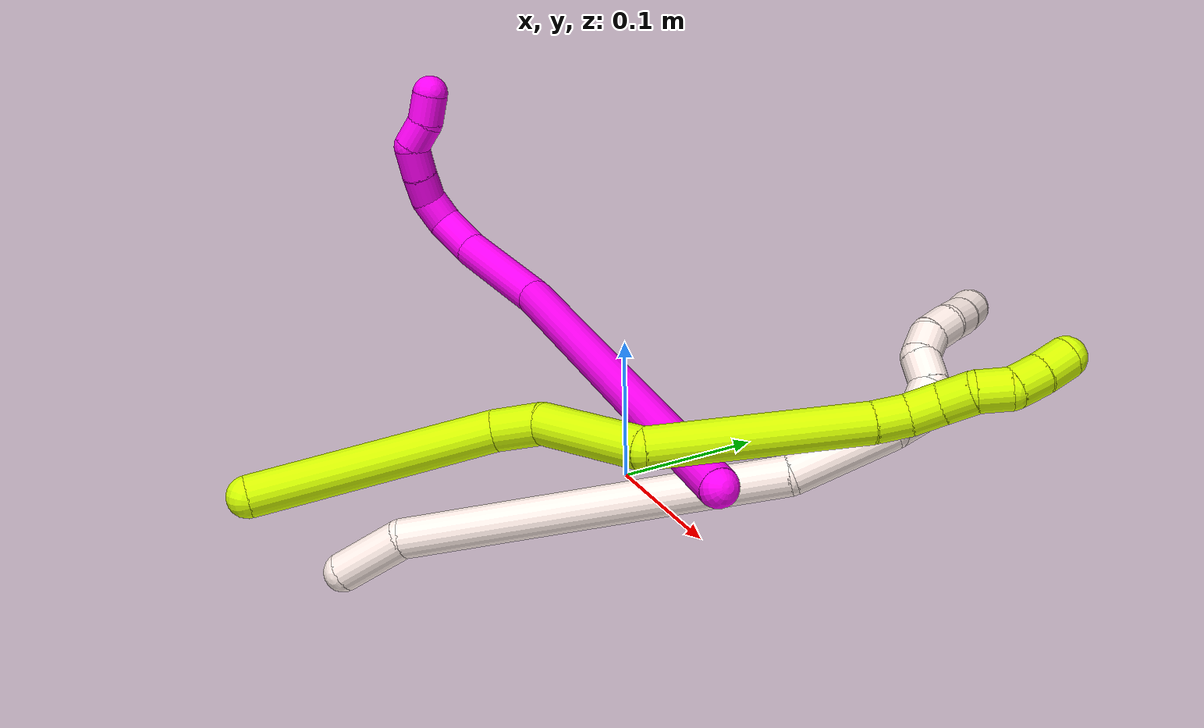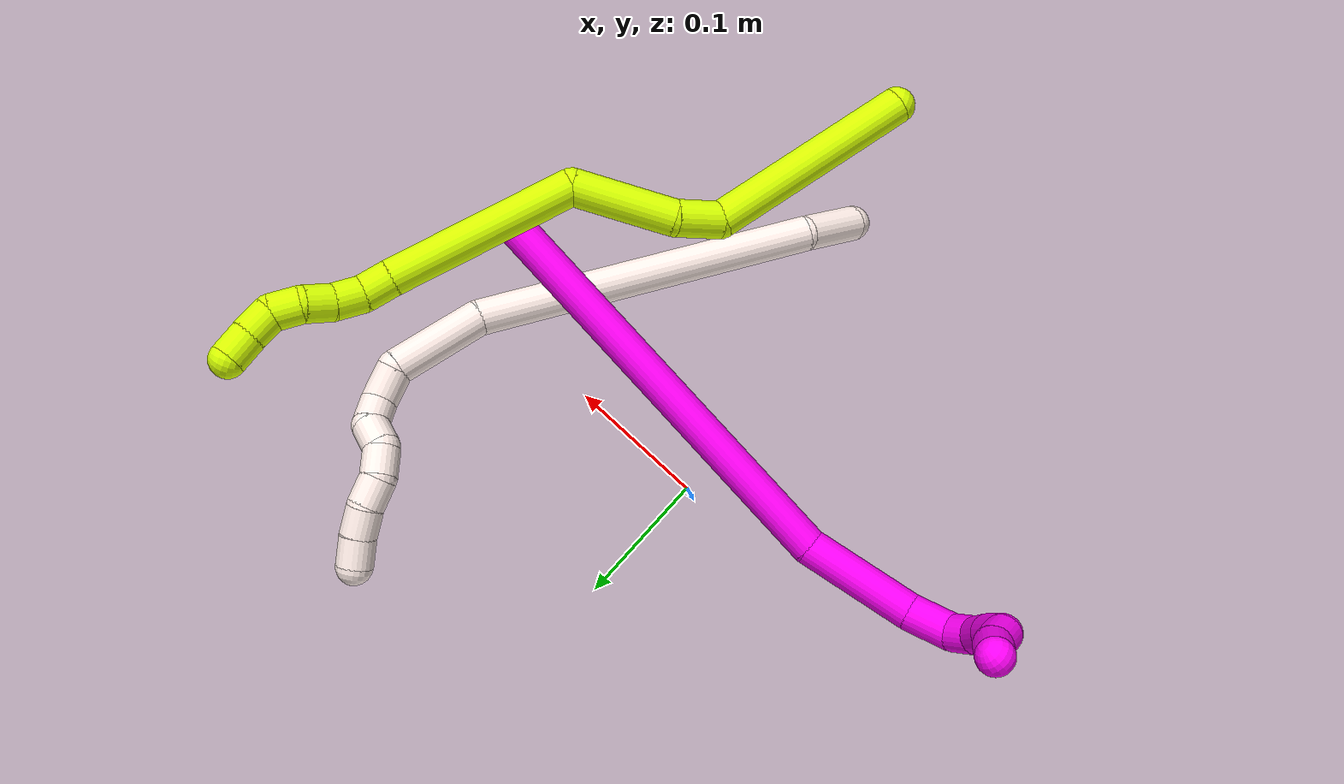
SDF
<sdf version="1.7">
 <world name="default">
  <model name="10">
   <static>0</static>
   <link name="10">
    <collision name="collision-cylinder-e_1_1_4">
     <pose>-0.060135 0.018952 -0.128294 -2.99493 -0.434187 2.49858</pose>
     <geometry><cylinder><radius>0.0125</radius><length>0.2859</length></cylinder></geometry>
     <surface>
      <friction><ode><mu>1.16</mu><mu2>1.16</mu2><slip1>0</slip1><slip2>0</slip2></ode></friction>
      <contact><ode><kp>1e+06</kp><kd>1</kd><max_vel>0</max_vel><min_depth>0.001</min_depth></ode></contact>
     </surface>
    </collision>
    <visual name="visual-cylinder-e_1_1_4">
     <pose>-0.060135 0.018952 -0.128294 -2.99493 -0.434187 2.49858</pose>
     <geometry><cylinder><radius>0.0125</radius><length>0.2859</length></cylinder></geometry>
     <material><ambient>1 0 0.964706 1</ambient></material>
    </visual>
    <collision name="collision-cylinder-e_2_4_5">
     <pose>-0.142405 0.034146 -0.288285 3.02358 -0.606319 -2.76829</pose>
     <geometry><cylinder><radius>0.0125</radius><length>0.077686</length></cylinder></geometry>
     <surface>
      <friction><ode><mu>1.16</mu><mu2>1.16</mu2><slip1>0</slip1><slip2>0</slip2></ode></friction>
      <contact><ode><kp>1e+06</kp><kd>1</kd><max_vel>0</max_vel><min_depth>0.001</min_depth></ode></contact>
     </surface>
    </collision>
    <visual name="visual-cylinder-e_2_4_5">
     <pose>-0.142405 0.034146 -0.288285 3.02358 -0.606319 -2.76829</pose>
     <geometry><cylinder><radius>0.0125</radius><length>0.077686</length></cylinder></geometry>
     <material><ambient>1 0 0.964706 1</ambient></material>
    </visual>
    <collision name="collision-cylinder-e_3_5_6">
     <pose>-0.176875 0.027626 -0.329004 2.84451 -0.917852 -2.55345</pose>
     <geometry><cylinder><radius>0.0125</radius><length>0.03106</length></cylinder></geometry>
     <surface>
      <friction><ode><mu>1.16</mu><mu2>1.16</mu2><slip1>0</slip1><slip2>0</slip2></ode></friction>
      <contact><ode><kp>1e+06</kp><kd>1</kd><max_vel>0</max_vel><min_depth>0.001</min_depth></ode></contact>
     </surface>
    </collision>
    <visual name="visual-cylinder-e_3_5_6">
     <pose>-0.176875 0.027626 -0.329004 2.84451 -0.917852 -2.55345</pose>
     <geometry><cylinder><radius>0.0125</radius><length>0.03106</length></cylinder></geometry>
     <material><ambient>1 0 0.964706 1</ambient></material>
    </visual>
    <collision name="collision-cylinder-e_4_6_7">
     <pose>-0.199019 0.021985 -0.338296 1.66424 -1.28407 -1.37491</pose>
     <geometry><cylinder><radius>0.0125</radius><length>0.020451</length></cylinder></geometry>
     <surface>
      <friction><ode><mu>1.16</mu><mu2>1.16</mu2><slip1>0</slip1><slip2>0</slip2></ode></friction>
      <contact><ode><kp>1e+06</kp><kd>1</kd><max_vel>0</max_vel><min_depth>0.001</min_depth></ode></contact>
     </surface>
    </collision>
    <visual name="visual-cylinder-e_4_6_7">
     <pose>-0.199019 0.021985 -0.338296 1.66424 -1.28407 -1.37491</pose>
     <geometry><cylinder><radius>0.0125</radius><length>0.020451</length></cylinder></geometry>
     <material><ambient>1 0 0.964706 1</ambient></material>
    </visual>
    <collision name="collision-cylinder-e_5_7_8">
     <pose>-0.21812 0.017592 -0.334152 0.330477 -1.10545 -0.205012</pose>
     <geometry><cylinder><radius>0.0125</radius><length>0.020797</length></cylinder></geometry>
     <surface>
      <friction><ode><mu>1.16</mu><mu2>1.16</mu2><slip1>0</slip1><slip2>0</slip2></ode></friction>
      <contact><ode><kp>1e+06</kp><kd>1</kd><max_vel>0</max_vel><min_depth>0.001</min_depth></ode></contact>
     </surface>
    </collision>
    <visual name="visual-cylinder-e_5_7_8">
     <pose>-0.21812 0.017592 -0.334152 0.330477 -1.10545 -0.205012</pose>
     <geometry><cylinder><radius>0.0125</radius><length>0.020797</length></cylinder></geometry>
     <material><ambient>1 0 0.964706 1</ambient></material>
    </visual>
    <collision name="collision-cylinder-e_6_8_9">
     <pose>-0.237656 0.01527 -0.325211 0.176433 -1.14885 -0.114365</pose>
     <geometry><cylinder><radius>0.0125</radius><length>0.022456</length></cylinder></geometry>
     <surface>
      <friction><ode><mu>1.16</mu><mu2>1.16</mu2><slip1>0</slip1><slip2>0</slip2></ode></friction>
      <contact><ode><kp>1e+06</kp><kd>1</kd><max_vel>0</max_vel><min_depth>0.001</min_depth></ode></contact>
     </surface>
    </collision>
    <visual name="visual-cylinder-e_6_8_9">
     <pose>-0.237656 0.01527 -0.325211 0.176433 -1.14885 -0.114365</pose>
     <geometry><cylinder><radius>0.0125</radius><length>0.022456</length></cylinder></geometry>
     <material><ambient>1 0 0.964706 1</ambient></material>
    </visual>
    <collision name="collision-cylinder-e_7_9_10">
     <pose>-0.254107 0.020367 -0.315078 -0.811302 -0.651437 0.288096</pose>
     <geometry><cylinder><radius>0.0125</radius><length>0.020476</length></cylinder></geometry>
     <surface>
      <friction><ode><mu>1.16</mu><mu2>1.16</mu2><slip1>0</slip1><slip2>0</slip2></ode></friction>
      <contact><ode><kp>1e+06</kp><kd>1</kd><max_vel>0</max_vel><min_depth>0.001</min_depth></ode></contact>
     </surface>
    </collision>
    <visual name="visual-cylinder-e_7_9_10">
     <pose>-0.254107 0.020367 -0.315078 -0.811302 -0.651437 0.288096</pose>
     <geometry><cylinder><radius>0.0125</radius><length>0.020476</length></cylinder></geometry>
     <material><ambient>1 0 0.964706 1</ambient></material>
    </visual>
    <collision name="collision-cylinder-e_8_10_2">
     <pose>-0.269156 0.03005 -0.305043 -0.706218 -0.988443 0.392071</pose>
     <geometry><cylinder><radius>0.0125</radius><length>0.021173</length></cylinder></geometry>
     <surface>
      <friction><ode><mu>1.16</mu><mu2>1.16</mu2><slip1>0</slip1><slip2>0</slip2></ode></friction>
      <contact><ode><kp>1e+06</kp><kd>1</kd><max_vel>0</max_vel><min_depth>0.001</min_depth></ode></contact>
     </surface>
    </collision>
    <visual name="visual-cylinder-e_8_10_2">
     <pose>-0.269156 0.03005 -0.305043 -0.706218 -0.988443 0.392071</pose>
     <geometry><cylinder><radius>0.0125</radius><length>0.021173</length></cylinder></geometry>
     <material><ambient>1 0 0.964706 1</ambient></material>
    </visual>
    <collision name="collision-sphere-2">
     <pose>-0.277997 0.033829 -0.300613 0 -0 0</pose>
     <geometry><sphere><radius>0.0125</radius></sphere></geometry>
     <surface>
      <friction><ode><mu>1.16</mu><mu2>1.16</mu2><slip1>0</slip1><slip2>0</slip2></ode></friction>
      <contact><ode><kp>1e+06</kp><kd>1</kd><max_vel>0</max_vel><min_depth>0.001</min_depth></ode></contact>
     </surface>
    </collision>
    <visual name="visual-sphere-2">
     <pose>-0.277997 0.033829 -0.300613 0 -0 0</pose>
     <geometry><sphere><radius>0.0125</radius></sphere></geometry>
     <material><ambient>1 0 0.964706 1</ambient></material>
    </visual>
    <collision name="collision-sphere-10">
     <pose>-0.260314 0.026272 -0.309472 0 -0 0</pose>
     <geometry><sphere><radius>0.0125</radius></sphere></geometry>
     <surface>
      <friction><ode><mu>1.16</mu><mu2>1.16</mu2><slip1>0</slip1><slip2>0</slip2></ode></friction>
      <contact><ode><kp>1e+06</kp><kd>1</kd><max_vel>0</max_vel><min_depth>0.001</min_depth></ode></contact>
     </surface>
    </collision>
    <visual name="visual-sphere-10">
     <pose>-0.260314 0.026272 -0.309472 0 -0 0</pose>
     <geometry><sphere><radius>0.0125</radius></sphere></geometry>
     <material><ambient>1 0 0.964706 1</ambient></material>
    </visual>
    <collision name="collision-sphere-9">
     <pose>-0.247899 0.014463 -0.320684 0 -0 0</pose>
     <geometry><sphere><radius>0.0125</radius></sphere></geometry>
     <surface>
      <friction><ode><mu>1.16</mu><mu2>1.16</mu2><slip1>0</slip1><slip2>0</slip2></ode></friction>
      <contact><ode><kp>1e+06</kp><kd>1</kd><max_vel>0</max_vel><min_depth>0.001</min_depth></ode></contact>
     </surface>
    </collision>
    <visual name="visual-sphere-9">
     <pose>-0.247899 0.014463 -0.320684 0 -0 0</pose>
     <geometry><sphere><radius>0.0125</radius></sphere></geometry>
     <material><ambient>1 0 0.964706 1</ambient></material>
    </visual>
    <collision name="collision-sphere-4">
     <pose>-0.12027 0.037904 -0.256587 0 -0 0</pose>
     <geometry><sphere><radius>0.0125</radius></sphere></geometry>
     <surface>
      <friction><ode><mu>1.16</mu><mu2>1.16</mu2><slip1>0</slip1><slip2>0</slip2></ode></friction>
      <contact><ode><kp>1e+06</kp><kd>1</kd><max_vel>0</max_vel><min_depth>0.001</min_depth></ode></contact>
     </surface>
    </collision>
    <visual name="visual-sphere-4">
     <pose>-0.12027 0.037904 -0.256587 0 -0 0</pose>
     <geometry><sphere><radius>0.0125</radius></sphere></geometry>
     <material><ambient>1 0 0.964706 1</ambient></material>
    </visual>
    <collision name="collision-sphere-1">
     <geometry><sphere><radius>0.0125</radius></sphere></geometry>
     <surface>
      <friction><ode><mu>1.16</mu><mu2>1.16</mu2><slip1>0</slip1><slip2>0</slip2></ode></friction>
      <contact><ode><kp>1e+06</kp><kd>1</kd><max_vel>0</max_vel><min_depth>0.001</min_depth></ode></contact>
     </surface>
    </collision>
    <visual name="visual-sphere-1">
     <geometry><sphere><radius>0.0125</radius></sphere></geometry>
     <material><ambient>1 0 0.964706 1</ambient></material>
    </visual>
    <collision name="collision-sphere-8">
     <pose>-0.227412 0.016078 -0.329738 0 -0 0</pose>
     <geometry><sphere><radius>0.0125</radius></sphere></geometry>
     <surface>
      <friction><ode><mu>1.16</mu><mu2>1.16</mu2><slip1>0</slip1><slip2>0</slip2></ode></friction>
      <contact><ode><kp>1e+06</kp><kd>1</kd><max_vel>0</max_vel><min_depth>0.001</min_depth></ode></contact>
     </surface>
    </collision>
    <visual name="visual-sphere-8">
     <pose>-0.227412 0.016078 -0.329738 0 -0 0</pose>
     <geometry><sphere><radius>0.0125</radius></sphere></geometry>
     <material><ambient>1 0 0.964706 1</ambient></material>
    </visual>
    <collision name="collision-sphere-5">
     <pose>-0.16454 0.030388 -0.319982 0 -0 0</pose>
     <geometry><sphere><radius>0.0125</radius></sphere></geometry>
     <surface>
      <friction><ode><mu>1.16</mu><mu2>1.16</mu2><slip1>0</slip1><slip2>0</slip2></ode></friction>
      <contact><ode><kp>1e+06</kp><kd>1</kd><max_vel>0</max_vel><min_depth>0.001</min_depth></ode></contact>
     </surface>
    </collision>
    <visual name="visual-sphere-5">
     <pose>-0.16454 0.030388 -0.319982 0 -0 0</pose>
     <geometry><sphere><radius>0.0125</radius></sphere></geometry>
     <material><ambient>1 0 0.964706 1</ambient></material>
    </visual>
    <collision name="collision-sphere-6">
     <pose>-0.189211 0.024864 -0.338026 0 -0 0</pose>
     <geometry><sphere><radius>0.0125</radius></sphere></geometry>
     <surface>
      <friction><ode><mu>1.16</mu><mu2>1.16</mu2><slip1>0</slip1><slip2>0</slip2></ode></friction>
      <contact><ode><kp>1e+06</kp><kd>1</kd><max_vel>0</max_vel><min_depth>0.001</min_depth></ode></contact>
     </surface>
    </collision>
    <visual name="visual-sphere-6">
     <pose>-0.189211 0.024864 -0.338026 0 -0 0</pose>
     <geometry><sphere><radius>0.0125</radius></sphere></geometry>
     <material><ambient>1 0 0.964706 1</ambient></material>
    </visual>
    <collision name="collision-sphere-7">
     <pose>-0.208827 0.019106 -0.338565 0 -0 0</pose>
     <geometry><sphere><radius>0.0125</radius></sphere></geometry>
     <surface>
      <friction><ode><mu>1.16</mu><mu2>1.16</mu2><slip1>0</slip1><slip2>0</slip2></ode></friction>
      <contact><ode><kp>1e+06</kp><kd>1</kd><max_vel>0</max_vel><min_depth>0.001</min_depth></ode></contact>
     </surface>
    </collision>
    <visual name="visual-sphere-7">
     <pose>-0.208827 0.019106 -0.338565 0 -0 0</pose>
     <geometry><sphere><radius>0.0125</radius></sphere></geometry>
     <material><ambient>1 0 0.964706 1</ambient></material>
    </visual>
    <inertial>
     <pose>-0.117189 0.022282 -0.20675 0 -0 0</pose>
     <mass>0.5</mass>
     <inertia>
      <ixx>-0.000423</ixx>
      <ixy>0</ixy>
      <ixz>0</ixz>
      <iyy>0.002728</iyy>
      <iyz>0</iyz>
      <izz>0.000579</izz>
     </inertia>
    </inertial>
   </link>
   <pose>0.208709 -0.054452 0.104393 0.337248 1.11742 0.347884</pose>
  </model>
  <model name="11">
   <static>0</static>
   <link name="11">
    <collision name="collision-cylinder-e_1_1_4">
     <pose>0.002808 0.021469 -0.006294 -1.85596 0.124854 -0.166541</pose>
     <geometry><cylinder><radius>0.0125</radius><length>0.045097</length></cylinder></geometry>
     <surface>
      <friction><ode><mu>1.16</mu><mu2>1.16</mu2><slip1>0</slip1><slip2>0</slip2></ode></friction>
      <contact><ode><kp>1e+06</kp><kd>1</kd><max_vel>0</max_vel><min_depth>0.001</min_depth></ode></contact>
     </surface>
    </collision>
    <visual name="visual-cylinder-e_1_1_4">
     <pose>0.002808 0.021469 -0.006294 -1.85596 0.124854 -0.166541</pose>
     <geometry><cylinder><radius>0.0125</radius><length>0.045097</length></cylinder></geometry>
     <material><ambient>1 0.933333 0.909804 1</ambient></material>
    </visual>
    <collision name="collision-cylinder-e_2_4_5">
     <pose>0.060174 0.140165 -0.058823 -2.01469 0.469047 -0.723105</pose>
     <geometry><cylinder><radius>0.0125</radius><length>0.241389</length></cylinder></geometry>
     <surface>
      <friction><ode><mu>1.16</mu><mu2>1.16</mu2><slip1>0</slip1><slip2>0</slip2></ode></friction>
      <contact><ode><kp>1e+06</kp><kd>1</kd><max_vel>0</max_vel><min_depth>0.001</min_depth></ode></contact>
     </surface>
    </collision>
    <visual name="visual-cylinder-e_2_4_5">
     <pose>0.060174 0.140165 -0.058823 -2.01469 0.469047 -0.723105</pose>
     <geometry><cylinder><radius>0.0125</radius><length>0.241389</length></cylinder></geometry>
     <material><ambient>1 0.933333 0.909804 1</ambient></material>
    </visual>
    <collision name="collision-cylinder-e_3_5_6">
     <pose>0.121985 0.263378 -0.12502 -2.2258 0.217807 -0.43663</pose>
     <geometry><cylinder><radius>0.0125</radius><length>0.067124</length></cylinder></geometry>
     <surface>
      <friction><ode><mu>1.16</mu><mu2>1.16</mu2><slip1>0</slip1><slip2>0</slip2></ode></friction>
      <contact><ode><kp>1e+06</kp><kd>1</kd><max_vel>0</max_vel><min_depth>0.001</min_depth></ode></contact>
     </surface>
    </collision>
    <visual name="visual-cylinder-e_3_5_6">
     <pose>0.121985 0.263378 -0.12502 -2.2258 0.217807 -0.43663</pose>
     <geometry><cylinder><radius>0.0125</radius><length>0.067124</length></cylinder></geometry>
     <material><ambient>1 0.933333 0.909804 1</ambient></material>
    </visual>
    <collision name="collision-cylinder-e_4_6_7">
     <pose>0.130625 0.292939 -0.156948 -2.85143 0.110674 -0.724781</pose>
     <geometry><cylinder><radius>0.0125</radius><length>0.025132</length></cylinder></geometry>
     <surface>
      <friction><ode><mu>1.16</mu><mu2>1.16</mu2><slip1>0</slip1><slip2>0</slip2></ode></friction>
      <contact><ode><kp>1e+06</kp><kd>1</kd><max_vel>0</max_vel><min_depth>0.001</min_depth></ode></contact>
     </surface>
    </collision>
    <visual name="visual-cylinder-e_4_6_7">
     <pose>0.130625 0.292939 -0.156948 -2.85143 0.110674 -0.724781</pose>
     <geometry><cylinder><radius>0.0125</radius><length>0.025132</length></cylinder></geometry>
     <material><ambient>1 0.933333 0.909804 1</ambient></material>
    </visual>
    <collision name="collision-cylinder-e_5_7_8">
     <pose>0.127107 0.302156 -0.175947 -2.46526 -0.498273 1.25259</pose>
     <geometry><cylinder><radius>0.0125</radius><length>0.02053</length></cylinder></geometry>
     <surface>
      <friction><ode><mu>1.16</mu><mu2>1.16</mu2><slip1>0</slip1><slip2>0</slip2></ode></friction>
      <contact><ode><kp>1e+06</kp><kd>1</kd><max_vel>0</max_vel><min_depth>0.001</min_depth></ode></contact>
     </surface>
    </collision>
    <visual name="visual-cylinder-e_5_7_8">
     <pose>0.127107 0.302156 -0.175947 -2.46526 -0.498273 1.25259</pose>
     <geometry><cylinder><radius>0.0125</radius><length>0.02053</length></cylinder></geometry>
     <material><ambient>1 0.933333 0.909804 1</ambient></material>
    </visual>
    <collision name="collision-cylinder-e_6_8_9">
     <pose>0.113898 0.308081 -0.188661 -3.09204 -0.970179 3.04764</pose>
     <geometry><cylinder><radius>0.0125</radius><length>0.02013</length></cylinder></geometry>
     <surface>
      <friction><ode><mu>1.16</mu><mu2>1.16</mu2><slip1>0</slip1><slip2>0</slip2></ode></friction>
      <contact><ode><kp>1e+06</kp><kd>1</kd><max_vel>0</max_vel><min_depth>0.001</min_depth></ode></contact>
     </surface>
    </collision>
    <visual name="visual-cylinder-e_6_8_9">
     <pose>0.113898 0.308081 -0.188661 -3.09204 -0.970179 3.04764</pose>
     <geometry><cylinder><radius>0.0125</radius><length>0.02013</length></cylinder></geometry>
     <material><ambient>1 0.933333 0.909804 1</ambient></material>
    </visual>
    <collision name="collision-cylinder-e_7_9_10">
     <pose>0.101962 0.31073 -0.203526 -2.88937 -0.365734 1.93965</pose>
     <geometry><cylinder><radius>0.0125</radius><length>0.020312</length></cylinder></geometry>
     <surface>
      <friction><ode><mu>1.16</mu><mu2>1.16</mu2><slip1>0</slip1><slip2>0</slip2></ode></friction>
      <contact><ode><kp>1e+06</kp><kd>1</kd><max_vel>0</max_vel><min_depth>0.001</min_depth></ode></contact>
     </surface>
    </collision>
    <visual name="visual-cylinder-e_7_9_10">
     <pose>0.101962 0.31073 -0.203526 -2.88937 -0.365734 1.93965</pose>
     <geometry><cylinder><radius>0.0125</radius><length>0.020312</length></cylinder></geometry>
     <material><ambient>1 0.933333 0.909804 1</ambient></material>
    </visual>
    <collision name="collision-cylinder-e_8_10_11">
     <pose>0.098848 0.316132 -0.222307 -2.83525 0.051453 -0.330328</pose>
     <geometry><cylinder><radius>0.0125</radius><length>0.020156</length></cylinder></geometry>
     <surface>
      <friction><ode><mu>1.16</mu><mu2>1.16</mu2><slip1>0</slip1><slip2>0</slip2></ode></friction>
      <contact><ode><kp>1e+06</kp><kd>1</kd><max_vel>0</max_vel><min_depth>0.001</min_depth></ode></contact>
     </surface>
    </collision>
    <visual name="visual-cylinder-e_8_10_11">
     <pose>0.098848 0.316132 -0.222307 -2.83525 0.051453 -0.330328</pose>
     <geometry><cylinder><radius>0.0125</radius><length>0.020156</length></cylinder></geometry>
     <material><ambient>1 0.933333 0.909804 1</ambient></material>
    </visual>
    <collision name="collision-cylinder-e_9_11_12">
     <pose>0.100193 0.319634 -0.241876 -3.09483 0.082581 -2.11145</pose>
     <geometry><cylinder><radius>0.0125</radius><length>0.020037</length></cylinder></geometry>
     <surface>
      <friction><ode><mu>1.16</mu><mu2>1.16</mu2><slip1>0</slip1><slip2>0</slip2></ode></friction>
      <contact><ode><kp>1e+06</kp><kd>1</kd><max_vel>0</max_vel><min_depth>0.001</min_depth></ode></contact>
     </surface>
    </collision>
    <visual name="visual-cylinder-e_9_11_12">
     <pose>0.100193 0.319634 -0.241876 -3.09483 0.082581 -2.11145</pose>
     <geometry><cylinder><radius>0.0125</radius><length>0.020037</length></cylinder></geometry>
     <material><ambient>1 0.933333 0.909804 1</ambient></material>
    </visual>
    <collision name="collision-cylinder-e_10_12_2">
     <pose>0.100922 0.319731 -0.261889 3.10479 -0.009661 -0.513324</pose>
     <geometry><cylinder><radius>0.0125</radius><length>0.020093</length></cylinder></geometry>
     <surface>
      <friction><ode><mu>1.16</mu><mu2>1.16</mu2><slip1>0</slip1><slip2>0</slip2></ode></friction>
      <contact><ode><kp>1e+06</kp><kd>1</kd><max_vel>0</max_vel><min_depth>0.001</min_depth></ode></contact>
     </surface>
    </collision>
    <visual name="visual-cylinder-e_10_12_2">
     <pose>0.100922 0.319731 -0.261889 3.10479 -0.009661 -0.513324</pose>
     <geometry><cylinder><radius>0.0125</radius><length>0.020093</length></cylinder></geometry>
     <material><ambient>1 0.933333 0.909804 1</ambient></material>
    </visual>
    <collision name="collision-sphere-2">
     <pose>0.100825 0.319362 -0.271928 0 -0 0</pose>
     <geometry><sphere><radius>0.0125</radius></sphere></geometry>
     <surface>
      <friction><ode><mu>1.16</mu><mu2>1.16</mu2><slip1>0</slip1><slip2>0</slip2></ode></friction>
      <contact><ode><kp>1e+06</kp><kd>1</kd><max_vel>0</max_vel><min_depth>0.001</min_depth></ode></contact>
     </surface>
    </collision>
    <visual name="visual-sphere-2">
     <pose>0.100825 0.319362 -0.271928 0 -0 0</pose>
     <geometry><sphere><radius>0.0125</radius></sphere></geometry>
     <material><ambient>1 0.933333 0.909804 1</ambient></material>
    </visual>
    <collision name="collision-sphere-12">
     <pose>0.101019 0.320101 -0.25185 0 -0 0</pose>
     <geometry><sphere><radius>0.0125</radius></sphere></geometry>
     <surface>
      <friction><ode><mu>1.16</mu><mu2>1.16</mu2><slip1>0</slip1><slip2>0</slip2></ode></friction>
      <contact><ode><kp>1e+06</kp><kd>1</kd><max_vel>0</max_vel><min_depth>0.001</min_depth></ode></contact>
     </surface>
    </collision>
    <visual name="visual-sphere-12">
     <pose>0.101019 0.320101 -0.25185 0 -0 0</pose>
     <geometry><sphere><radius>0.0125</radius></sphere></geometry>
     <material><ambient>1 0.933333 0.909804 1</ambient></material>
    </visual>
    <collision name="collision-sphere-11">
     <pose>0.099367 0.319168 -0.231903 0 -0 0</pose>
     <geometry><sphere><radius>0.0125</radius></sphere></geometry>
     <surface>
      <friction><ode><mu>1.16</mu><mu2>1.16</mu2><slip1>0</slip1><slip2>0</slip2></ode></friction>
      <contact><ode><kp>1e+06</kp><kd>1</kd><max_vel>0</max_vel><min_depth>0.001</min_depth></ode></contact>
     </surface>
    </collision>
    <visual name="visual-sphere-11">
     <pose>0.099367 0.319168 -0.231903 0 -0 0</pose>
     <geometry><sphere><radius>0.0125</radius></sphere></geometry>
     <material><ambient>1 0.933333 0.909804 1</ambient></material>
    </visual>
    <collision name="collision-sphere-10">
     <pose>0.09833 0.313097 -0.212711 0 -0 0</pose>
     <geometry><sphere><radius>0.0125</radius></sphere></geometry>
     <surface>
      <friction><ode><mu>1.16</mu><mu2>1.16</mu2><slip1>0</slip1><slip2>0</slip2></ode></friction>
      <contact><ode><kp>1e+06</kp><kd>1</kd><max_vel>0</max_vel><min_depth>0.001</min_depth></ode></contact>
     </surface>
    </collision>
    <visual name="visual-sphere-10">
     <pose>0.09833 0.313097 -0.212711 0 -0 0</pose>
     <geometry><sphere><radius>0.0125</radius></sphere></geometry>
     <material><ambient>1 0.933333 0.909804 1</ambient></material>
    </visual>
    <collision name="collision-sphere-9">
     <pose>0.105594 0.308363 -0.194342 0 -0 0</pose>
     <geometry><sphere><radius>0.0125</radius></sphere></geometry>
     <surface>
      <friction><ode><mu>1.16</mu><mu2>1.16</mu2><slip1>0</slip1><slip2>0</slip2></ode></friction>
      <contact><ode><kp>1e+06</kp><kd>1</kd><max_vel>0</max_vel><min_depth>0.001</min_depth></ode></contact>
     </surface>
    </collision>
    <visual name="visual-sphere-9">
     <pose>0.105594 0.308363 -0.194342 0 -0 0</pose>
     <geometry><sphere><radius>0.0125</radius></sphere></geometry>
     <material><ambient>1 0.933333 0.909804 1</ambient></material>
    </visual>
    <collision name="collision-sphere-4">
     <pose>0.005616 0.042939 -0.012588 0 -0 0</pose>
     <geometry><sphere><radius>0.0125</radius></sphere></geometry>
     <surface>
      <friction><ode><mu>1.16</mu><mu2>1.16</mu2><slip1>0</slip1><slip2>0</slip2></ode></friction>
      <contact><ode><kp>1e+06</kp><kd>1</kd><max_vel>0</max_vel><min_depth>0.001</min_depth></ode></contact>
     </surface>
    </collision>
    <visual name="visual-sphere-4">
     <pose>0.005616 0.042939 -0.012588 0 -0 0</pose>
     <geometry><sphere><radius>0.0125</radius></sphere></geometry>
     <material><ambient>1 0.933333 0.909804 1</ambient></material>
    </visual>
    <collision name="collision-sphere-1">
     <geometry><sphere><radius>0.0125</radius></sphere></geometry>
     <surface>
      <friction><ode><mu>1.16</mu><mu2>1.16</mu2><slip1>0</slip1><slip2>0</slip2></ode></friction>
      <contact><ode><kp>1e+06</kp><kd>1</kd><max_vel>0</max_vel><min_depth>0.001</min_depth></ode></contact>
     </surface>
    </collision>
    <visual name="visual-sphere-1">
     <geometry><sphere><radius>0.0125</radius></sphere></geometry>
     <material><ambient>1 0.933333 0.909804 1</ambient></material>
    </visual>
    <collision name="collision-sphere-8">
     <pose>0.122202 0.3078 -0.182979 0 -0 0</pose>
     <geometry><sphere><radius>0.0125</radius></sphere></geometry>
     <surface>
      <friction><ode><mu>1.16</mu><mu2>1.16</mu2><slip1>0</slip1><slip2>0</slip2></ode></friction>
      <contact><ode><kp>1e+06</kp><kd>1</kd><max_vel>0</max_vel><min_depth>0.001</min_depth></ode></contact>
     </surface>
    </collision>
    <visual name="visual-sphere-8">
     <pose>0.122202 0.3078 -0.182979 0 -0 0</pose>
     <geometry><sphere><radius>0.0125</radius></sphere></geometry>
     <material><ambient>1 0.933333 0.909804 1</ambient></material>
    </visual>
    <collision name="collision-sphere-5">
     <pose>0.114733 0.237391 -0.105058 0 -0 0</pose>
     <geometry><sphere><radius>0.0125</radius></sphere></geometry>
     <surface>
      <friction><ode><mu>1.16</mu><mu2>1.16</mu2><slip1>0</slip1><slip2>0</slip2></ode></friction>
      <contact><ode><kp>1e+06</kp><kd>1</kd><max_vel>0</max_vel><min_depth>0.001</min_depth></ode></contact>
     </surface>
    </collision>
    <visual name="visual-sphere-5">
     <pose>0.114733 0.237391 -0.105058 0 -0 0</pose>
     <geometry><sphere><radius>0.0125</radius></sphere></geometry>
     <material><ambient>1 0.933333 0.909804 1</ambient></material>
    </visual>
    <collision name="collision-sphere-6">
     <pose>0.129237 0.289365 -0.144981 0 -0 0</pose>
     <geometry><sphere><radius>0.0125</radius></sphere></geometry>
     <surface>
      <friction><ode><mu>1.16</mu><mu2>1.16</mu2><slip1>0</slip1><slip2>0</slip2></ode></friction>
      <contact><ode><kp>1e+06</kp><kd>1</kd><max_vel>0</max_vel><min_depth>0.001</min_depth></ode></contact>
     </surface>
    </collision>
    <visual name="visual-sphere-6">
     <pose>0.129237 0.289365 -0.144981 0 -0 0</pose>
     <geometry><sphere><radius>0.0125</radius></sphere></geometry>
     <material><ambient>1 0.933333 0.909804 1</ambient></material>
    </visual>
    <collision name="collision-sphere-7">
     <pose>0.132013 0.296512 -0.168915 0 -0 0</pose>
     <geometry><sphere><radius>0.0125</radius></sphere></geometry>
     <surface>
      <friction><ode><mu>1.16</mu><mu2>1.16</mu2><slip1>0</slip1><slip2>0</slip2></ode></friction>
      <contact><ode><kp>1e+06</kp><kd>1</kd><max_vel>0</max_vel><min_depth>0.001</min_depth></ode></contact>
     </surface>
    </collision>
    <visual name="visual-sphere-7">
     <pose>0.132013 0.296512 -0.168915 0 -0 0</pose>
     <geometry><sphere><radius>0.0125</radius></sphere></geometry>
     <material><ambient>1 0.933333 0.909804 1</ambient></material>
    </visual>
    <inertial>
     <pose>0.078248 0.195522 -0.105905 0 -0 0</pose>
     <mass>0.5</mass>
     <inertia>
      <ixx>0.000123</ixx>
      <ixy>0</ixy>
      <ixz>0</ixz>
      <iyy>-0.000765</iyy>
      <iyz>0</iyz>
      <izz>-0.001545</izz>
     </inertia>
    </inertial>
   </link>
   <pose>0.042057 -0.222471 0.011498 1.43845 0.785134 0.47943</pose>
  </model>
  <model name="15">
   <static>0</static>
   <link name="15">
    <collision name="collision-cylinder-e_1_1_4">
     <pose>-0.008626 0.059903 0.040084 -0.98108 -0.11911 0.063668</pose>
     <geometry><cylinder><radius>0.0125</radius><length>0.145183</length></cylinder></geometry>
     <surface>
      <friction><ode><mu>1.16</mu><mu2>1.16</mu2><slip1>0</slip1><slip2>0</slip2></ode></friction>
      <contact><ode><kp>1e+06</kp><kd>1</kd><max_vel>0</max_vel><min_depth>0.001</min_depth></ode></contact>
     </surface>
    </collision>
    <visual name="visual-cylinder-e_1_1_4">
     <pose>-0.008626 0.059903 0.040084 -0.98108 -0.11911 0.063668</pose>
     <geometry><cylinder><radius>0.0125</radius><length>0.145183</length></cylinder></geometry>
     <material><ambient>0.835294 1 0 1</ambient></material>
    </visual>
    <collision name="collision-cylinder-e_2_4_5">
     <pose>-0.020783 0.125474 0.094451 -0.377722 -0.225843 0.043345</pose>
     <geometry><cylinder><radius>0.0125</radius><length>0.031535</length></cylinder></geometry>
     <surface>
      <friction><ode><mu>1.16</mu><mu2>1.16</mu2><slip1>0</slip1><slip2>0</slip2></ode></friction>
      <contact><ode><kp>1e+06</kp><kd>1</kd><max_vel>0</max_vel><min_depth>0.001</min_depth></ode></contact>
     </surface>
    </collision>
    <visual name="visual-cylinder-e_2_4_5">
     <pose>-0.020783 0.125474 0.094451 -0.377722 -0.225843 0.043345</pose>
     <geometry><cylinder><radius>0.0125</radius><length>0.031535</length></cylinder></geometry>
     <material><ambient>0.835294 1 0 1</ambient></material>
    </visual>
    <collision name="collision-cylinder-e_3_5_6">
     <pose>-0.023296 0.135434 0.143658 -0.122305 0.02889 -0.001769</pose>
     <geometry><cylinder><radius>0.0125</radius><length>0.070401</length></cylinder></geometry>
     <surface>
      <friction><ode><mu>1.16</mu><mu2>1.16</mu2><slip1>0</slip1><slip2>0</slip2></ode></friction>
      <contact><ode><kp>1e+06</kp><kd>1</kd><max_vel>0</max_vel><min_depth>0.001</min_depth></ode></contact>
     </surface>
    </collision>
    <visual name="visual-cylinder-e_3_5_6">
     <pose>-0.023296 0.135434 0.143658 -0.122305 0.02889 -0.001769</pose>
     <geometry><cylinder><radius>0.0125</radius><length>0.070401</length></cylinder></geometry>
     <material><ambient>0.835294 1 0 1</ambient></material>
    </visual>
    <collision name="collision-cylinder-e_4_6_7">
     <pose>-0.02198 0.190163 0.220078 -0.882328 0.004583 -0.002164</pose>
     <geometry><cylinder><radius>0.0125</radius><length>0.130627</length></cylinder></geometry>
     <surface>
      <friction><ode><mu>1.16</mu><mu2>1.16</mu2><slip1>0</slip1><slip2>0</slip2></ode></friction>
      <contact><ode><kp>1e+06</kp><kd>1</kd><max_vel>0</max_vel><min_depth>0.001</min_depth></ode></contact>
     </surface>
    </collision>
    <visual name="visual-cylinder-e_4_6_7">
     <pose>-0.02198 0.190163 0.220078 -0.882328 0.004583 -0.002164</pose>
     <geometry><cylinder><radius>0.0125</radius><length>0.130627</length></cylinder></geometry>
     <material><ambient>0.835294 1 0 1</ambient></material>
    </visual>
    <collision name="collision-cylinder-e_5_7_8">
     <pose>-0.022472 0.249153 0.267901 -0.934072 -0.074201 0.037428</pose>
     <geometry><cylinder><radius>0.0125</radius><length>0.021338</length></cylinder></geometry>
     <surface>
      <friction><ode><mu>1.16</mu><mu2>1.16</mu2><slip1>0</slip1><slip2>0</slip2></ode></friction>
      <contact><ode><kp>1e+06</kp><kd>1</kd><max_vel>0</max_vel><min_depth>0.001</min_depth></ode></contact>
     </surface>
    </collision>
    <visual name="visual-cylinder-e_5_7_8">
     <pose>-0.022472 0.249153 0.267901 -0.934072 -0.074201 0.037428</pose>
     <geometry><cylinder><radius>0.0125</radius><length>0.021338</length></cylinder></geometry>
     <material><ambient>0.835294 1 0 1</ambient></material>
    </visual>
    <collision name="collision-cylinder-e_6_8_9">
     <pose>-0.026554 0.263891 0.281854 -0.681215 -0.323446 0.115517</pose>
     <geometry><cylinder><radius>0.0125</radius><length>0.020711</length></cylinder></geometry>
     <surface>
      <friction><ode><mu>1.16</mu><mu2>1.16</mu2><slip1>0</slip1><slip2>0</slip2></ode></friction>
      <contact><ode><kp>1e+06</kp><kd>1</kd><max_vel>0</max_vel><min_depth>0.001</min_depth></ode></contact>
     </surface>
    </collision>
    <visual name="visual-cylinder-e_6_8_9">
     <pose>-0.026554 0.263891 0.281854 -0.681215 -0.323446 0.115517</pose>
     <geometry><cylinder><radius>0.0125</radius><length>0.020711</length></cylinder></geometry>
     <material><ambient>0.835294 1 0 1</ambient></material>
    </visual>
    <collision name="collision-cylinder-e_7_9_10">
     <pose>-0.033681 0.27422 0.29775 -0.464785 -0.393063 0.094172</pose>
     <geometry><cylinder><radius>0.0125</radius><length>0.020026</length></cylinder></geometry>
     <surface>
      <friction><ode><mu>1.16</mu><mu2>1.16</mu2><slip1>0</slip1><slip2>0</slip2></ode></friction>
      <contact><ode><kp>1e+06</kp><kd>1</kd><max_vel>0</max_vel><min_depth>0.001</min_depth></ode></contact>
     </surface>
    </collision>
    <visual name="visual-cylinder-e_7_9_10">
     <pose>-0.033681 0.27422 0.29775 -0.464785 -0.393063 0.094172</pose>
     <geometry><cylinder><radius>0.0125</radius><length>0.020026</length></cylinder></geometry>
     <material><ambient>0.835294 1 0 1</ambient></material>
    </visual>
    <collision name="collision-cylinder-e_8_10_11">
     <pose>-0.037973 0.284698 0.313812 -0.682281 -0.045463 0.016143</pose>
     <geometry><cylinder><radius>0.0125</radius><length>0.020103</length></cylinder></geometry>
     <surface>
      <friction><ode><mu>1.16</mu><mu2>1.16</mu2><slip1>0</slip1><slip2>0</slip2></ode></friction>
      <contact><ode><kp>1e+06</kp><kd>1</kd><max_vel>0</max_vel><min_depth>0.001</min_depth></ode></contact>
     </surface>
    </collision>
    <visual name="visual-cylinder-e_8_10_11">
     <pose>-0.037973 0.284698 0.313812 -0.682281 -0.045463 0.016143</pose>
     <geometry><cylinder><radius>0.0125</radius><length>0.020103</length></cylinder></geometry>
     <material><ambient>0.835294 1 0 1</ambient></material>
    </visual>
    <collision name="collision-cylinder-e_9_11_12">
     <pose>-0.040454 0.300245 0.325005 -1.21732 -0.203191 0.141861</pose>
     <geometry><cylinder><radius>0.0125</radius><length>0.020059</length></cylinder></geometry>
     <surface>
      <friction><ode><mu>1.16</mu><mu2>1.16</mu2><slip1>0</slip1><slip2>0</slip2></ode></friction>
      <contact><ode><kp>1e+06</kp><kd>1</kd><max_vel>0</max_vel><min_depth>0.001</min_depth></ode></contact>
     </surface>
    </collision>
    <visual name="visual-cylinder-e_9_11_12">
     <pose>-0.040454 0.300245 0.325005 -1.21732 -0.203191 0.141861</pose>
     <geometry><cylinder><radius>0.0125</radius><length>0.020059</length></cylinder></geometry>
     <material><ambient>0.835294 1 0 1</ambient></material>
    </visual>
    <collision name="collision-cylinder-e_10_12_2">
     <pose>-0.045142 0.318719 0.331117 -1.28588 -0.269493 0.20242</pose>
     <geometry><cylinder><radius>0.0125</radius><length>0.020016</length></cylinder></geometry>
     <surface>
      <friction><ode><mu>1.16</mu><mu2>1.16</mu2><slip1>0</slip1><slip2>0</slip2></ode></friction>
      <contact><ode><kp>1e+06</kp><kd>1</kd><max_vel>0</max_vel><min_depth>0.001</min_depth></ode></contact>
     </surface>
    </collision>
    <visual name="visual-cylinder-e_10_12_2">
     <pose>-0.045142 0.318719 0.331117 -1.28588 -0.269493 0.20242</pose>
     <geometry><cylinder><radius>0.0125</radius><length>0.020016</length></cylinder></geometry>
     <material><ambient>0.835294 1 0 1</ambient></material>
    </visual>
    <collision name="collision-sphere-2">
     <pose>-0.047807 0.327977 0.333829 0 -0 0</pose>
     <geometry><sphere><radius>0.0125</radius></sphere></geometry>
     <surface>
      <friction><ode><mu>1.16</mu><mu2>1.16</mu2><slip1>0</slip1><slip2>0</slip2></ode></friction>
      <contact><ode><kp>1e+06</kp><kd>1</kd><max_vel>0</max_vel><min_depth>0.001</min_depth></ode></contact>
     </surface>
    </collision>
    <visual name="visual-sphere-2">
     <pose>-0.047807 0.327977 0.333829 0 -0 0</pose>
     <geometry><sphere><radius>0.0125</radius></sphere></geometry>
     <material><ambient>0.835294 1 0 1</ambient></material>
    </visual>
    <collision name="collision-sphere-12">
     <pose>-0.042477 0.309461 0.328406 0 -0 0</pose>
     <geometry><sphere><radius>0.0125</radius></sphere></geometry>
     <surface>
      <friction><ode><mu>1.16</mu><mu2>1.16</mu2><slip1>0</slip1><slip2>0</slip2></ode></friction>
      <contact><ode><kp>1e+06</kp><kd>1</kd><max_vel>0</max_vel><min_depth>0.001</min_depth></ode></contact>
     </surface>
    </collision>
    <visual name="visual-sphere-12">
     <pose>-0.042477 0.309461 0.328406 0 -0 0</pose>
     <geometry><sphere><radius>0.0125</radius></sphere></geometry>
     <material><ambient>0.835294 1 0 1</ambient></material>
    </visual>
    <collision name="collision-sphere-11">
     <pose>-0.03843 0.29103 0.321605 0 -0 0</pose>
     <geometry><sphere><radius>0.0125</radius></sphere></geometry>
     <surface>
      <friction><ode><mu>1.16</mu><mu2>1.16</mu2><slip1>0</slip1><slip2>0</slip2></ode></friction>
      <contact><ode><kp>1e+06</kp><kd>1</kd><max_vel>0</max_vel><min_depth>0.001</min_depth></ode></contact>
     </surface>
    </collision>
    <visual name="visual-sphere-11">
     <pose>-0.03843 0.29103 0.321605 0 -0 0</pose>
     <geometry><sphere><radius>0.0125</radius></sphere></geometry>
     <material><ambient>0.835294 1 0 1</ambient></material>
    </visual>
    <collision name="collision-sphere-10">
     <pose>-0.037516 0.278366 0.306018 0 -0 0</pose>
     <geometry><sphere><radius>0.0125</radius></sphere></geometry>
     <surface>
      <friction><ode><mu>1.16</mu><mu2>1.16</mu2><slip1>0</slip1><slip2>0</slip2></ode></friction>
      <contact><ode><kp>1e+06</kp><kd>1</kd><max_vel>0</max_vel><min_depth>0.001</min_depth></ode></contact>
     </surface>
    </collision>
    <visual name="visual-sphere-10">
     <pose>-0.037516 0.278366 0.306018 0 -0 0</pose>
     <geometry><sphere><radius>0.0125</radius></sphere></geometry>
     <material><ambient>0.835294 1 0 1</ambient></material>
    </visual>
    <collision name="collision-sphere-9">
     <pose>-0.029846 0.270074 0.289482 0 -0 0</pose>
     <geometry><sphere><radius>0.0125</radius></sphere></geometry>
     <surface>
      <friction><ode><mu>1.16</mu><mu2>1.16</mu2><slip1>0</slip1><slip2>0</slip2></ode></friction>
      <contact><ode><kp>1e+06</kp><kd>1</kd><max_vel>0</max_vel><min_depth>0.001</min_depth></ode></contact>
     </surface>
    </collision>
    <visual name="visual-sphere-9">
     <pose>-0.029846 0.270074 0.289482 0 -0 0</pose>
     <geometry><sphere><radius>0.0125</radius></sphere></geometry>
     <material><ambient>0.835294 1 0 1</ambient></material>
    </visual>
    <collision name="collision-sphere-4">
     <pose>-0.017252 0.119806 0.080168 0 -0 0</pose>
     <geometry><sphere><radius>0.0125</radius></sphere></geometry>
     <surface>
      <friction><ode><mu>1.16</mu><mu2>1.16</mu2><slip1>0</slip1><slip2>0</slip2></ode></friction>
      <contact><ode><kp>1e+06</kp><kd>1</kd><max_vel>0</max_vel><min_depth>0.001</min_depth></ode></contact>
     </surface>
    </collision>
    <visual name="visual-sphere-4">
     <pose>-0.017252 0.119806 0.080168 0 -0 0</pose>
     <geometry><sphere><radius>0.0125</radius></sphere></geometry>
     <material><ambient>0.835294 1 0 1</ambient></material>
    </visual>
    <collision name="collision-sphere-1">
     <geometry><sphere><radius>0.0125</radius></sphere></geometry>
     <surface>
      <friction><ode><mu>1.16</mu><mu2>1.16</mu2><slip1>0</slip1><slip2>0</slip2></ode></friction>
      <contact><ode><kp>1e+06</kp><kd>1</kd><max_vel>0</max_vel><min_depth>0.001</min_depth></ode></contact>
     </surface>
    </collision>
    <visual name="visual-sphere-1">
     <geometry><sphere><radius>0.0125</radius></sphere></geometry>
     <material><ambient>0.835294 1 0 1</ambient></material>
    </visual>
    <collision name="collision-sphere-8">
     <pose>-0.023263 0.257708 0.274227 0 -0 0</pose>
     <geometry><sphere><radius>0.0125</radius></sphere></geometry>
     <surface>
      <friction><ode><mu>1.16</mu><mu2>1.16</mu2><slip1>0</slip1><slip2>0</slip2></ode></friction>
      <contact><ode><kp>1e+06</kp><kd>1</kd><max_vel>0</max_vel><min_depth>0.001</min_depth></ode></contact>
     </surface>
    </collision>
    <visual name="visual-sphere-8">
     <pose>-0.023263 0.257708 0.274227 0 -0 0</pose>
     <geometry><sphere><radius>0.0125</radius></sphere></geometry>
     <material><ambient>0.835294 1 0 1</ambient></material>
    </visual>
    <collision name="collision-sphere-5">
     <pose>-0.024313 0.131141 0.108735 0 -0 0</pose>
     <geometry><sphere><radius>0.0125</radius></sphere></geometry>
     <surface>
      <friction><ode><mu>1.16</mu><mu2>1.16</mu2><slip1>0</slip1><slip2>0</slip2></ode></friction>
      <contact><ode><kp>1e+06</kp><kd>1</kd><max_vel>0</max_vel><min_depth>0.001</min_depth></ode></contact>
     </surface>
    </collision>
    <visual name="visual-sphere-5">
     <pose>-0.024313 0.131141 0.108735 0 -0 0</pose>
     <geometry><sphere><radius>0.0125</radius></sphere></geometry>
     <material><ambient>0.835294 1 0 1</ambient></material>
    </visual>
    <collision name="collision-sphere-6">
     <pose>-0.02228 0.139727 0.178581 0 -0 0</pose>
     <geometry><sphere><radius>0.0125</radius></sphere></geometry>
     <surface>
      <friction><ode><mu>1.16</mu><mu2>1.16</mu2><slip1>0</slip1><slip2>0</slip2></ode></friction>
      <contact><ode><kp>1e+06</kp><kd>1</kd><max_vel>0</max_vel><min_depth>0.001</min_depth></ode></contact>
     </surface>
    </collision>
    <visual name="visual-sphere-6">
     <pose>-0.02228 0.139727 0.178581 0 -0 0</pose>
     <geometry><sphere><radius>0.0125</radius></sphere></geometry>
     <material><ambient>0.835294 1 0 1</ambient></material>
    </visual>
    <collision name="collision-sphere-7">
     <pose>-0.021681 0.240599 0.261575 0 -0 0</pose>
     <geometry><sphere><radius>0.0125</radius></sphere></geometry>
     <surface>
      <friction><ode><mu>1.16</mu><mu2>1.16</mu2><slip1>0</slip1><slip2>0</slip2></ode></friction>
      <contact><ode><kp>1e+06</kp><kd>1</kd><max_vel>0</max_vel><min_depth>0.001</min_depth></ode></contact>
     </surface>
    </collision>
    <visual name="visual-sphere-7">
     <pose>-0.021681 0.240599 0.261575 0 -0 0</pose>
     <geometry><sphere><radius>0.0125</radius></sphere></geometry>
     <material><ambient>0.835294 1 0 1</ambient></material>
    </visual>
    <inertial>
     <pose>-0.021203 0.162856 0.169265 0 -0 0</pose>
     <mass>0.5</mass>
     <inertia>
      <ixx>0.000507</ixx>
      <ixy>0</ixy>
      <ixz>0</ixz>
      <iyy>0.000351</iyy>
      <iyz>0</iyz>
      <izz>-0.000316</izz>
     </inertia>
    </inertial>
   </link>
   <pose>0.077831 -0.28755 0.099417 -0.184803 1.47338 0.142063</pose>
  </model>
 </world>
</sdf>
